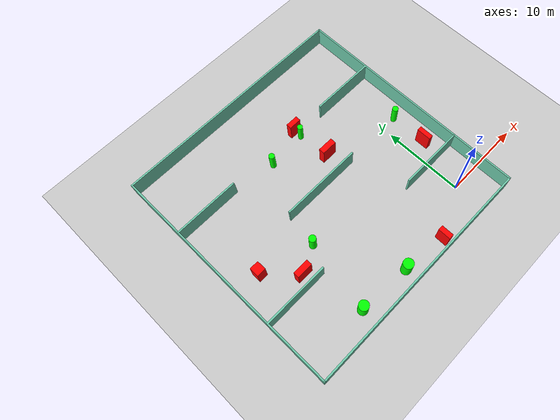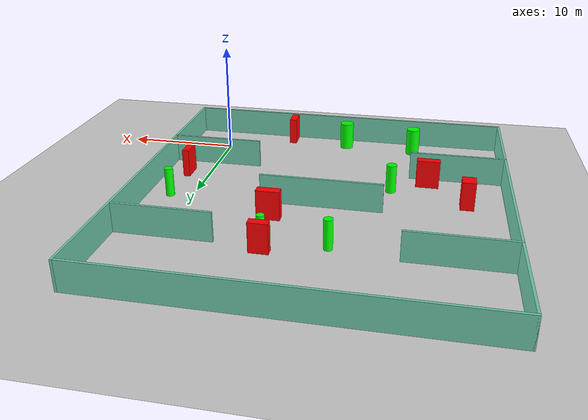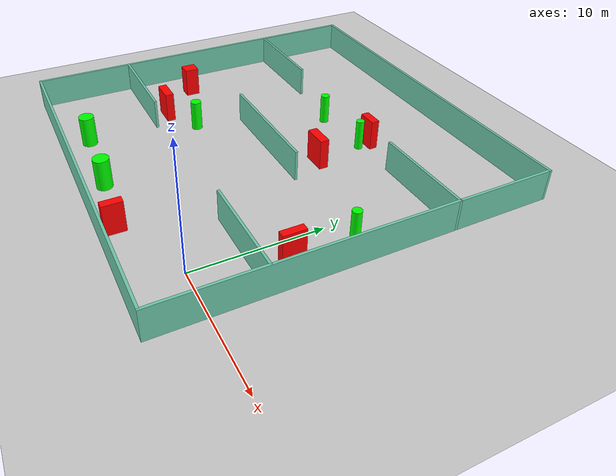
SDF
<sdf version="1.7">
 <world name="default">
  <light name="sun" type="directional">
   <pose>0 0 10 0 -0 0</pose>
   <diffuse>0.8 0.8 0.8 1</diffuse>
   <specular>0.2 0.2 0.2 1</specular>
   <attenuation>
    <range>1000</range>
    <constant>0.9</constant>
    <linear>0.01</linear>
    <quadratic>0.001</quadratic>
   </attenuation>
   <direction>-0.5 0.1 -0.9</direction>
   <spot><inner_angle>0</inner_angle><outer_angle>0</outer_angle><falloff>0</falloff></spot>
  </light>
  <model name="ground_plane">
   <static>1</static>
   <link name="link">
    <collision name="collision">
     <geometry><plane><normal>0 0 1</normal><size>100 100</size></plane></geometry>
     <surface>
      <contact><collide_bitmask>65535</collide_bitmask></contact>
      <friction><ode><mu>100</mu><mu2>50</mu2></ode></friction>
     </surface>
    </collision>
    <visual name="visual">
     <cast_shadows>0</cast_shadows>
     <geometry><plane><normal>0 0 1</normal><size>100 100</size></plane></geometry>
     <material>
      <script><uri>file://media/materials/scripts/gazebo.material</uri><name>Gazebo/Grey</name></script>
     </material>
    </visual>
   </link>
  </model>
  <gravity>0 0 -9.8</gravity>
  <magnetic_field>6e-06 2.3e-05 -4.2e-05</magnetic_field>
  <atmosphere type="adiabatic"/>
  <physics type="ode">
   <max_step_size>0.001</max_step_size>
   <real_time_factor>1</real_time_factor>
   <real_time_update_rate>1000</real_time_update_rate>
  </physics>
  <scene><ambient>0.4 0.4 0.4 1</ambient><background>0.7 0.7 0.7 1</background><shadows>1</shadows></scene>
  <spherical_coordinates>
   <surface_model>EARTH_WGS84</surface_model>
   <latitude_deg>0</latitude_deg>
   <longitude_deg>0</longitude_deg>
   <elevation>0</elevation>
   <heading_deg>0</heading_deg>
  </spherical_coordinates>
  <model name="my_base_walls">
   <link name="Wall_10">
    <collision name="Wall_10_Collision">
     <geometry><box><size>8.2 0.2 2.5</size></box></geometry>
     <pose>0 0 1.25 0 -0 0</pose>
    </collision>
    <visual name="Wall_10_Visual">
     <pose>0 0 1.25 0 -0 0</pose>
     <geometry><box><size>8.2 0.2 2.5</size></box></geometry>
     <material>
      <script><uri>file://media/materials/scripts/gazebo.material</uri><name>Gazebo/Grey</name></script>
      <ambient>0.435294 0.796078 0.67451 1</ambient>
     </material>
     <meta><layer>0</layer></meta>
    </visual>
    <pose>-11 -7 0 0 -0 0</pose>
   </link>
   <link name="Wall_12">
    <collision name="Wall_12_Collision">
     <geometry><box><size>8.2 0.2 2.5</size></box></geometry>
     <pose>0 0 1.25 0 -0 0</pose>
    </collision>
    <visual name="Wall_12_Visual">
     <pose>0 0 1.25 0 -0 0</pose>
     <geometry><box><size>8.2 0.2 2.5</size></box></geometry>
     <material>
      <script><uri>file://media/materials/scripts/gazebo.material</uri><name>Gazebo/Grey</name></script>
      <ambient>0.435294 0.796078 0.67451 1</ambient>
     </material>
     <meta><layer>0</layer></meta>
    </visual>
    <pose>-11 7 0 0 -0 0</pose>
   </link>
   <link name="Wall_14">
    <collision name="Wall_14_Collision">
     <geometry><box><size>8.2 0.2 2.5</size></box></geometry>
     <pose>0 0 1.25 0 -0 0</pose>
    </collision>
    <visual name="Wall_14_Visual">
     <pose>0 0 1.25 0 -0 0</pose>
     <geometry><box><size>8.2 0.2 2.5</size></box></geometry>
     <material>
      <script><uri>file://media/materials/scripts/gazebo.material</uri><name>Gazebo/Grey</name></script>
      <ambient>0.435294 0.796078 0.67451 1</ambient>
     </material>
     <meta><layer>0</layer></meta>
    </visual>
    <pose>11 7 0 0 -0 3.14159</pose>
   </link>
   <link name="Wall_16">
    <collision name="Wall_16_Collision">
     <geometry><box><size>10.2 0.2 2.5</size></box></geometry>
     <pose>0 0 1.25 0 -0 0</pose>
    </collision>
    <visual name="Wall_16_Visual">
     <pose>0 0 1.25 0 -0 0</pose>
     <geometry><box><size>10.2 0.2 2.5</size></box></geometry>
     <material>
      <script><uri>file://media/materials/scripts/gazebo.material</uri><name>Gazebo/Grey</name></script>
      <ambient>0.435294 0.796078 0.67451 1</ambient>
     </material>
     <meta><layer>0</layer></meta>
    </visual>
    <pose>0 0 0 0 -0 3.14159</pose>
   </link>
   <link name="Wall_2">
    <collision name="Wall_2_Collision">
     <geometry><box><size>30.2 0.2 2.5</size></box></geometry>
     <pose>0 0 1.25 0 -0 0</pose>
    </collision>
    <visual name="Wall_2_Visual">
     <pose>0 0 1.25 0 -0 0</pose>
     <geometry><box><size>30.2 0.2 2.5</size></box></geometry>
     <material>
      <script><uri>file://media/materials/scripts/gazebo.material</uri><name>Gazebo/Grey</name></script>
      <ambient>0.435294 0.796078 0.67451 1</ambient>
     </material>
     <meta><layer>0</layer></meta>
    </visual>
    <pose>0 -15 0 0 -0 3.14159</pose>
   </link>
   <link name="Wall_3">
    <collision name="Wall_3_Collision">
     <geometry><box><size>30.2 0.2 2.5</size></box></geometry>
     <pose>0 0 1.25 0 -0 0</pose>
    </collision>
    <visual name="Wall_3_Visual">
     <pose>0 0 1.25 0 -0 0</pose>
     <geometry><box><size>30.2 0.2 2.5</size></box></geometry>
     <material>
      <script><uri>file://media/materials/scripts/gazebo.material</uri><name>Gazebo/Grey</name></script>
      <ambient>0.435294 0.796078 0.67451 1</ambient>
     </material>
     <meta><layer>0</layer></meta>
    </visual>
    <pose>-15 0 0 0 -0 1.5708</pose>
   </link>
   <link name="Wall_4">
    <collision name="Wall_4_Collision">
     <geometry><box><size>30.2 0.2 2.5</size></box></geometry>
     <pose>0 0 1.25 0 -0 0</pose>
    </collision>
    <visual name="Wall_4_Visual">
     <pose>0 0 1.25 0 -0 0</pose>
     <geometry><box><size>30.2 0.2 2.5</size></box></geometry>
     <material>
      <script><uri>file://media/materials/scripts/gazebo.material</uri><name>Gazebo/Grey</name></script>
      <ambient>0.435294 0.796078 0.67451 1</ambient>
     </material>
     <meta><layer>0</layer></meta>
    </visual>
    <pose>0 15 0 0 -0 0</pose>
   </link>
   <link name="Wall_6">
    <collision name="Wall_6_Collision">
     <geometry><box><size>30.2 0.2 2.5</size></box></geometry>
     <pose>0 0 1.25 0 -0 0</pose>
    </collision>
    <visual name="Wall_6_Visual">
     <pose>0 0 1.25 0 -0 0</pose>
     <geometry><box><size>30.2 0.2 2.5</size></box></geometry>
     <material>
      <script><uri>file://media/materials/scripts/gazebo.material</uri><name>Gazebo/Grey</name></script>
      <ambient>0.435294 0.796078 0.67451 1</ambient>
     </material>
     <meta><layer>0</layer></meta>
    </visual>
    <pose>15 0 0 0 -0 1.5708</pose>
   </link>
   <link name="Wall_8">
    <collision name="Wall_8_Collision">
     <geometry><box><size>8.2 0.2 2.5</size></box></geometry>
     <pose>0 0 1.25 0 -0 0</pose>
    </collision>
    <visual name="Wall_8_Visual">
     <pose>0 0 1.25 0 -0 0</pose>
     <geometry><box><size>8.2 0.2 2.5</size></box></geometry>
     <material>
      <script><uri>file://media/materials/scripts/gazebo.material</uri><name>Gazebo/Grey</name></script>
      <ambient>0.435294 0.796078 0.67451 1</ambient>
     </material>
     <meta><layer>0</layer></meta>
    </visual>
    <pose>11 -7 0 0 -0 3.14159</pose>
   </link>
   <static>1</static>
   <pose>-11 11 0 0 -0 0</pose>
  </model>
  <model name="cylinder1">
   <static>1</static>
   <link name="link">
    <inertial>
     <mass>1</mass>
     <inertia><ixx>0.5</ixx><ixy>0</ixy><ixz>0</ixz><iyy>0.5</iyy><iyz>0</iyz><izz>1</izz></inertia>
    </inertial>
    <collision name="collision">
     <geometry><cylinder><radius>0.6075152565420535</radius><length>2.5</length></cylinder></geometry>
    </collision>
    <visual name="visual">
     <geometry><cylinder><radius>0.6075152565420535</radius><length>2.5</length></cylinder></geometry>
     <material>
      <ambient>0 1 0 1</ambient>
      <diffuse>0 1 0 1</diffuse>
      <specular>0.1 0.1 0.1 1</specular>
      <emissive>0 0 0 0</emissive>
     </material>
    </visual>
   </link>
   <pose>-17.920511451946044 -1.7969454031223275 1.25 0 0 0</pose>
  </model>
  <model name="cylinder2">
   <static>1</static>
   <link name="link">
    <inertial>
     <mass>1</mass>
     <inertia><ixx>0.5</ixx><ixy>0</ixy><ixz>0</ixz><iyy>0.5</iyy><iyz>0</iyz><izz>1</izz></inertia>
    </inertial>
    <collision name="collision">
     <geometry><cylinder><radius>0.36075870160799295</radius><length>2.5</length></cylinder></geometry>
    </collision>
    <visual name="visual">
     <geometry><cylinder><radius>0.36075870160799295</radius><length>2.5</length></cylinder></geometry>
     <material>
      <ambient>0 1 0 1</ambient>
      <diffuse>0 1 0 1</diffuse>
      <specular>0.1 0.1 0.1 1</specular>
      <emissive>0 0 0 0</emissive>
     </material>
    </visual>
   </link>
   <pose>-12.649738749524216 17.37615698912634 1.25 0 0 0</pose>
  </model>
  <model name="cylinder3">
   <static>1</static>
   <link name="link">
    <inertial>
     <mass>1</mass>
     <inertia><ixx>0.5</ixx><ixy>0</ixy><ixz>0</ixz><iyy>0.5</iyy><iyz>0</iyz><izz>1</izz></inertia>
    </inertial>
    <collision name="collision">
     <geometry><cylinder><radius>0.6265716090626757</radius><length>2.5</length></cylinder></geometry>
    </collision>
    <visual name="visual">
     <geometry><cylinder><radius>0.6265716090626757</radius><length>2.5</length></cylinder></geometry>
     <material>
      <ambient>0 1 0 1</ambient>
      <diffuse>0 1 0 1</diffuse>
      <specular>0.1 0.1 0.1 1</specular>
      <emissive>0 0 0 0</emissive>
     </material>
    </visual>
   </link>
   <pose>-11.41112483781015 -2.2290620456937833 1.25 0 0 0</pose>
  </model>
  <model name="cylinder4">
   <static>1</static>
   <link name="link">
    <inertial>
     <mass>1</mass>
     <inertia><ixx>0.5</ixx><ixy>0</ixy><ixz>0</ixz><iyy>0.5</iyy><iyz>0</iyz><izz>1</izz></inertia>
    </inertial>
    <collision name="collision">
     <geometry><cylinder><radius>0.43390576794077623</radius><length>2.5</length></cylinder></geometry>
    </collision>
    <visual name="visual">
     <geometry><cylinder><radius>0.43390576794077623</radius><length>2.5</length></cylinder></geometry>
     <material>
      <ambient>0 1 0 1</ambient>
      <diffuse>0 1 0 1</diffuse>
      <specular>0.1 0.1 0.1 1</specular>
      <emissive>0 0 0 0</emissive>
     </material>
    </visual>
   </link>
   <pose>-16.457613416384813 7.050801981526837 1.25 0 0 0</pose>
  </model>
  <model name="cylinder5">
   <static>1</static>
   <link name="link">
    <inertial>
     <mass>1</mass>
     <inertia><ixx>0.5</ixx><ixy>0</ixy><ixz>0</ixz><iyy>0.5</iyy><iyz>0</iyz><izz>1</izz></inertia>
    </inertial>
    <collision name="collision">
     <geometry><cylinder><radius>0.32323390153145304</radius><length>2.5</length></cylinder></geometry>
    </collision>
    <visual name="visual">
     <geometry><cylinder><radius>0.32323390153145304</radius><length>2.5</length></cylinder></geometry>
     <material>
      <ambient>0 1 0 1</ambient>
      <diffuse>0 1 0 1</diffuse>
      <specular>0.1 0.1 0.1 1</specular>
      <emissive>0 0 0 0</emissive>
     </material>
    </visual>
   </link>
   <pose>-7.703626404742472 17.731338547555858 1.25 0 0 0</pose>
  </model>
  <model name="cylinder6">
   <static>1</static>
   <link name="link">
    <inertial>
     <mass>1</mass>
     <inertia><ixx>0.5</ixx><ixy>0</ixy><ixz>0</ixz><iyy>0.5</iyy><iyz>0</iyz><izz>1</izz></inertia>
    </inertial>
    <collision name="collision">
     <geometry><cylinder><radius>0.3640869372615502</radius><length>2.5</length></cylinder></geometry>
    </collision>
    <visual name="visual">
     <geometry><cylinder><radius>0.3640869372615502</radius><length>2.5</length></cylinder></geometry>
     <material>
      <ambient>0 1 0 1</ambient>
      <diffuse>0 1 0 1</diffuse>
      <specular>0.1 0.1 0.1 1</specular>
      <emissive>0 0 0 0</emissive>
     </material>
    </visual>
   </link>
   <pose>1.923517480394903 11.275092021630652 1.25 0 0 0</pose>
  </model>
  <model name="box1">
   <static>1</static>
   <link name="link">
    <inertial>
     <mass>1</mass>
     <inertia><ixx>0.083</ixx><ixy>0</ixy><ixz>0</ixz><iyy>0.083</iyy><iyz>0</iyz><izz>0.083</izz></inertia>
    </inertial>
    <collision name="collision">
     <geometry><box><size>0.5790677970808618 1.769013899833426 2.5</size></box></geometry>
    </collision>
    <visual name="visual">
     <geometry><box><size>0.5790677970808618 1.769013899833426 2.5</size></box></geometry>
     <material>
      <ambient>1 0 0 1</ambient>
      <diffuse>1 0 0 1</diffuse>
      <specular>0.1 0.1 0.1 1</specular>
      <emissive>0 0 0 0</emissive>
     </material>
    </visual>
    <sensor name="my_contact" type="contact">
     <contact><collision>box_collision</collision><topic>__default_topic__</topic></contact>
    </sensor>
   </link>
   <pose>1.862367899469394 6.608287101825088 1.25 0 0 0</pose>
  </model>
  <model name="box2">
   <static>1</static>
   <link name="link">
    <inertial>
     <mass>1</mass>
     <inertia><ixx>0.083</ixx><ixy>0</ixy><ixz>0</ixz><iyy>0.083</iyy><iyz>0</iyz><izz>0.083</izz></inertia>
    </inertial>
    <collision name="collision">
     <geometry><box><size>1.5533102876951081 0.6481792742282136 2.5</size></box></geometry>
    </collision>
    <visual name="visual">
     <geometry><box><size>1.5533102876951081 0.6481792742282136 2.5</size></box></geometry>
     <material>
      <ambient>1 0 0 1</ambient>
      <diffuse>1 0 0 1</diffuse>
      <specular>0.1 0.1 0.1 1</specular>
      <emissive>0 0 0 0</emissive>
     </material>
    </visual>
    <sensor name="my_contact" type="contact">
     <contact><collision>box_collision</collision><topic>__default_topic__</topic></contact>
    </sensor>
   </link>
   <pose>-7.808192920220279 18.7187775134796 1.25 0 0 0</pose>
  </model>
  <model name="box3">
   <static>1</static>
   <link name="link">
    <inertial>
     <mass>1</mass>
     <inertia><ixx>0.083</ixx><ixy>0</ixy><ixz>0</ixz><iyy>0.083</iyy><iyz>0</iyz><izz>0.083</izz></inertia>
    </inertial>
    <collision name="collision">
     <geometry><box><size>1.977973866143185 0.6989195745459996 2.5</size></box></geometry>
    </collision>
    <visual name="visual">
     <geometry><box><size>1.977973866143185 0.6989195745459996 2.5</size></box></geometry>
     <material>
      <ambient>1 0 0 1</ambient>
      <diffuse>1 0 0 1</diffuse>
      <specular>0.1 0.1 0.1 1</specular>
      <emissive>0 0 0 0</emissive>
     </material>
    </visual>
    <sensor name="my_contact" type="contact">
     <contact><collision>box_collision</collision><topic>__default_topic__</topic></contact>
    </sensor>
   </link>
   <pose>-19.517807269383493 5.457768748694857 1.25 0 0 0</pose>
  </model>
  <model name="box4">
   <static>1</static>
   <link name="link">
    <inertial>
     <mass>1</mass>
     <inertia><ixx>0.083</ixx><ixy>0</ixy><ixz>0</ixz><iyy>0.083</iyy><iyz>0</iyz><izz>0.083</izz></inertia>
    </inertial>
    <collision name="collision">
     <geometry><box><size>1.1255629434383307 1.1717982607403565 2.5</size></box></geometry>
    </collision>
    <visual name="visual">
     <geometry><box><size>1.1255629434383307 1.1717982607403565 2.5</size></box></geometry>
     <material>
      <ambient>1 0 0 1</ambient>
      <diffuse>1 0 0 1</diffuse>
      <specular>0.1 0.1 0.1 1</specular>
      <emissive>0 0 0 0</emissive>
     </material>
    </visual>
    <sensor name="my_contact" type="contact">
     <contact><collision>box_collision</collision><topic>__default_topic__</topic></contact>
    </sensor>
   </link>
   <pose>-22.81044285314092 8.86489058893453 1.25 0 0 0</pose>
  </model>
  <model name="box5">
   <static>1</static>
   <link name="link">
    <inertial>
     <mass>1</mass>
     <inertia><ixx>0.083</ixx><ixy>0</ixy><ixz>0</ixz><iyy>0.083</iyy><iyz>0</iyz><izz>0.083</izz></inertia>
    </inertial>
    <collision name="collision">
     <geometry><box><size>1.9377025227801559 0.7300018093946284 2.5</size></box></geometry>
    </collision>
    <visual name="visual">
     <geometry><box><size>1.9377025227801559 0.7300018093946284 2.5</size></box></geometry>
     <material>
      <ambient>1 0 0 1</ambient>
      <diffuse>1 0 0 1</diffuse>
      <specular>0.1 0.1 0.1 1</specular>
      <emissive>0 0 0 0</emissive>
     </material>
    </visual>
    <sensor name="my_contact" type="contact">
     <contact><collision>box_collision</collision><topic>__default_topic__</topic></contact>
    </sensor>
   </link>
   <pose>-7.282866386223159 13.65644978126074 1.25 0 0 0</pose>
  </model>
  <model name="box6">
   <static>1</static>
   <link name="link">
    <inertial>
     <mass>1</mass>
     <inertia><ixx>0.083</ixx><ixy>0</ixy><ixz>0</ixz><iyy>0.083</iyy><iyz>0</iyz><izz>0.083</izz></inertia>
    </inertial>
    <collision name="collision">
     <geometry><box><size>0.6430634533236288 1.5467528204601797 2.5</size></box></geometry>
    </collision>
    <visual name="visual">
     <geometry><box><size>0.6430634533236288 1.5467528204601797 2.5</size></box></geometry>
     <material>
      <ambient>1 0 0 1</ambient>
      <diffuse>1 0 0 1</diffuse>
      <specular>0.1 0.1 0.1 1</specular>
      <emissive>0 0 0 0</emissive>
     </material>
    </visual>
    <sensor name="my_contact" type="contact">
     <contact><collision>box_collision</collision><topic>__default_topic__</topic></contact>
    </sensor>
   </link>
   <pose>-5.969103762757573 -2.882346975805727 1.25 0 0 0</pose>
  </model>
 </world>
</sdf>
